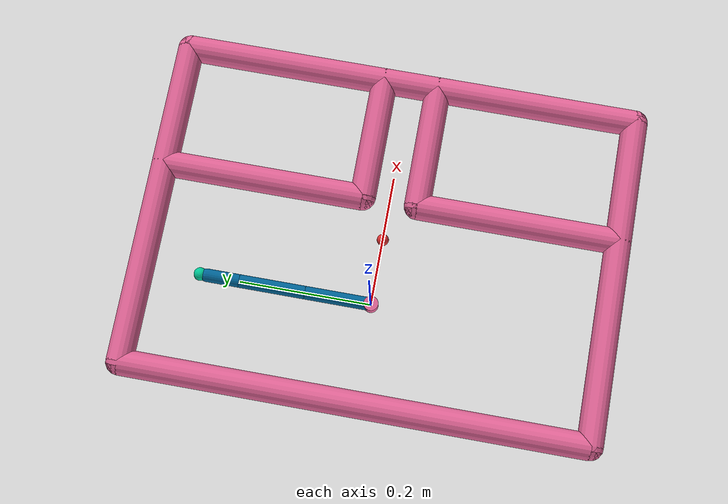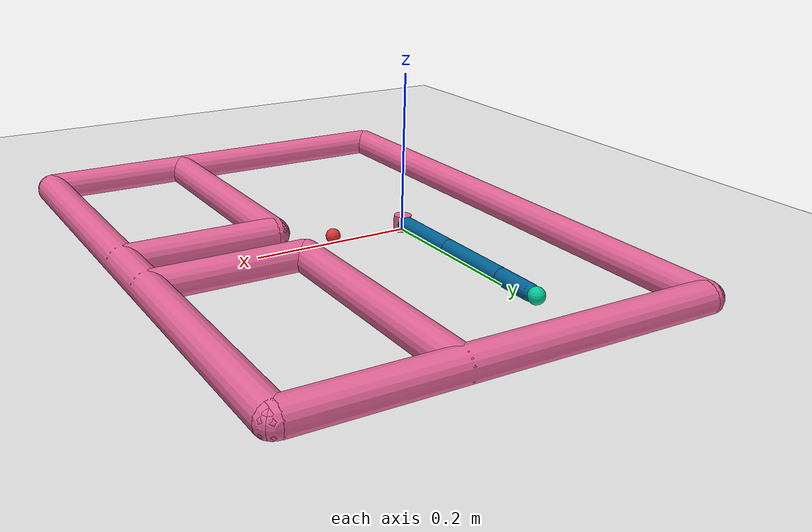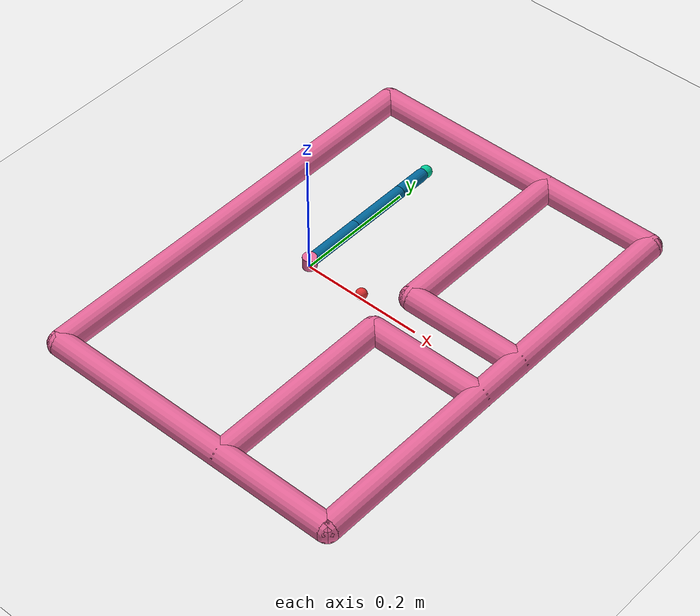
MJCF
<mujoco model="peg">
	<compiler angle="radian" inertiafromgeom="true"/>
	<default>
		<joint armature="1" damping="1" limited="true"/>
		<geom conaffinity="1" contype="1" condim="1" friction="1 0.1 0.1" rgba="0.7 0.7 0 1"/>
	</default>
	<option gravity="0 0 -9.81" integrator="RK4" timestep="0.01"/>
	<worldbody>
		<!-- Arena -->
		<geom name="ground" pos="0 0 0" rgba="0.9 0.9 0.9 1" size="1 1 10" type="plane"/>
		<geom fromto="-.15 -.35 .01 .35 -.35 .01" name="boundaryS" rgba="0.9 0.4 0.6 1" size=".02" type="capsule"/>
		<geom fromto=" .35 -.35 .01 .35  .35 .01" name="boundaryE" rgba="0.9 0.4 0.6 1" size=".02" type="capsule"/>
		<geom fromto="-.15  .35 .01 .35  .35 .01" name="boundaryN" rgba="0.9 0.4 0.6 1" size=".02" type="capsule"/>
		<geom fromto="-.15 -.35 .01 -.15 .35 .01" name="boundaryW" rgba="0.9 0.4 0.6 1" size=".02" type="capsule"/>
		<!-- Wall -->
		<geom name="wall_1_ground" pos="0.25 0.1830 0" rgba="0.53 0.3 0 1" size="0.1 0.1500 10" type="plane"/>
		<geom name="wall_2_ground" pos="0.25 -0.1830 0" rgba="0.53 0.3 0 1" size="0.1 0.1500 10" type="plane"/>
		<geom fromto="0.16 0.042 .01 .35 0.042 .01" name="wall_1_sideS" rgba="0.9 0.4 0.6 1" size=".02" type="capsule"/>
		<geom fromto="0.16 0.042 .01 0.16 0.35 .01" name="wall_1_sideW" rgba="0.9 0.4 0.6 1" size=".02" type="capsule"/>
		<geom fromto="0.16 -0.042 .01 .35 -0.042 .01" name="wall_2_sideN" rgba="0.9 0.4 0.6 1" size=".02" type="capsule"/>
		<geom fromto="0.16 -0.042 .01 0.16 -0.35 .01" name="wall_2_sideW" rgba="0.9 0.4 0.6 1" size=".02" type="capsule"/>
		<!-- Arm -->
		<geom fromto="0 0 0 0 0 0.02" name="root" rgba="0.9 0.4 0.6 1" size=".011" type="cylinder"/>
		<body name="body0" pos="0 0 .01">
			<geom fromto="0 0 0 0 0.1 0" name="link0" rgba="0.0 0.4 0.6 1" size=".01" type="capsule"/>
			<joint axis="0 0 1" limited="false" name="joint0" pos="0 0 0" type="hinge"/>
			<body name="body1" pos="0 0.1 0">
				<joint axis="0 0 1" limited="true" name="joint1" pos="0 0 0" range="-3.0 3.0" type="hinge"/>
				<geom fromto="0 0 0 0 0.1 0" name="link1" rgba="0.0 0.4 0.6 1" size=".01" type="capsule"/>
				<body name="body2" pos="0 0.1 0">
					<joint axis="0 0 1" limited="true" name="joint2" pos="0 0 0" range="-3.0 3.0" type="hinge"/>
					<geom fromto="0 0 0 0 0.05 0" name="link2" rgba="0.0 0.4 0.6 1" size=".01" type="capsule"/>
					<body name="fingertip" pos="0 0.06 0">
						<geom name="fingertip" pos="0 0 0" rgba="0.0 0.8 0.6 1" size=".01" type="sphere"/>
					</body>
				</body>
			</body>
		</body>
		<!-- Target -->
		<body name="target" pos=".1 0 .01">
			<joint armature="0" axis="1 0 0" damping="0" limited="true" name="target_x" pos="0 0 0" range="-.12 .32" ref=".1" stiffness="0" type="slide"/>
			<geom conaffinity="0" contype="0" name="target" pos="0 0 0" rgba="0.9 0.2 0.2 1" size=".009" type="sphere"/>
		</body>
	</worldbody>
	<actuator>
		<motor ctrllimited="true" ctrlrange="-1.0 1.0" gear="200.0" joint="joint0"/>
		<motor ctrllimited="true" ctrlrange="-1.0 1.0" gear="200.0" joint="joint1"/>
		<motor ctrllimited="true" ctrlrange="-1.0 1.0" gear="200.0" joint="joint2"/>
	</actuator>
</mujoco>
